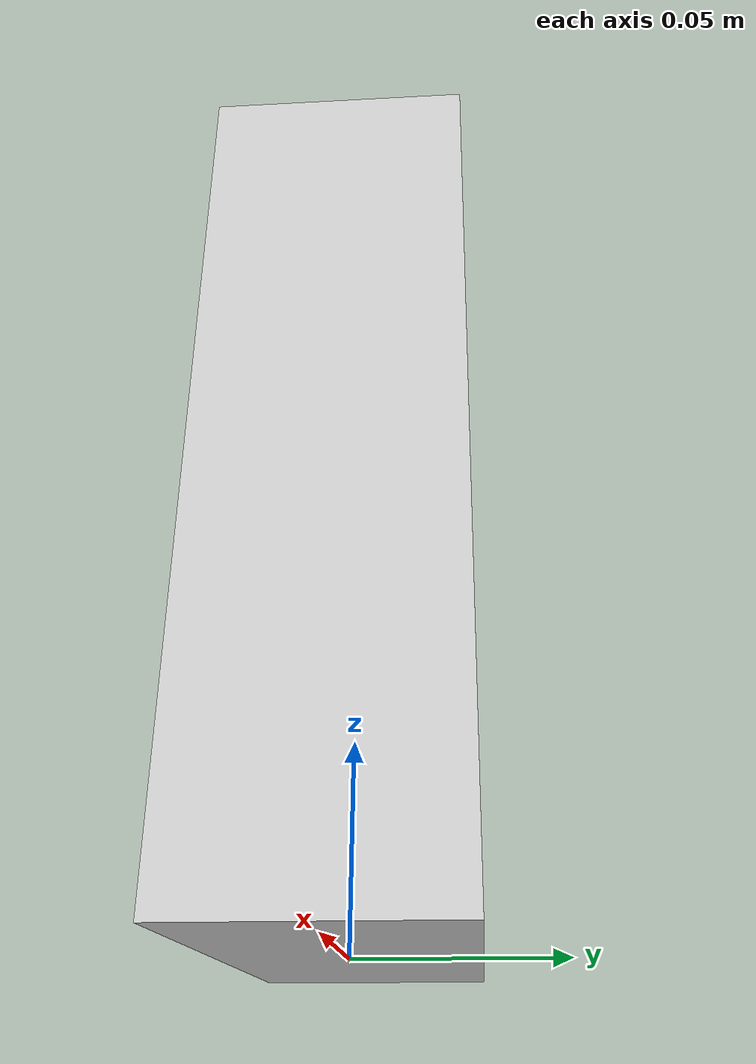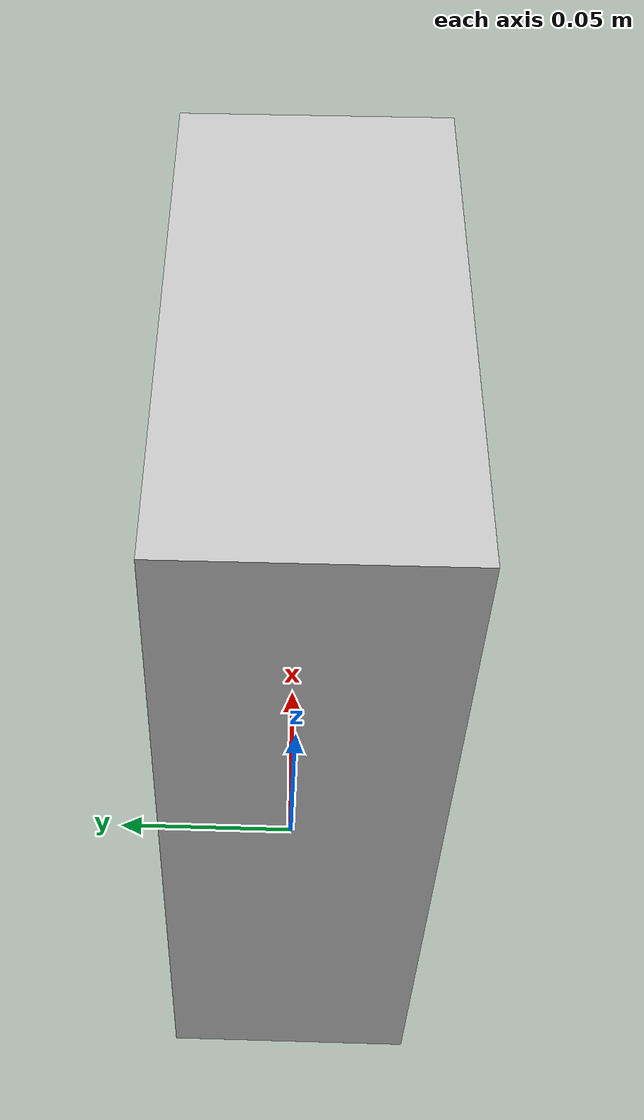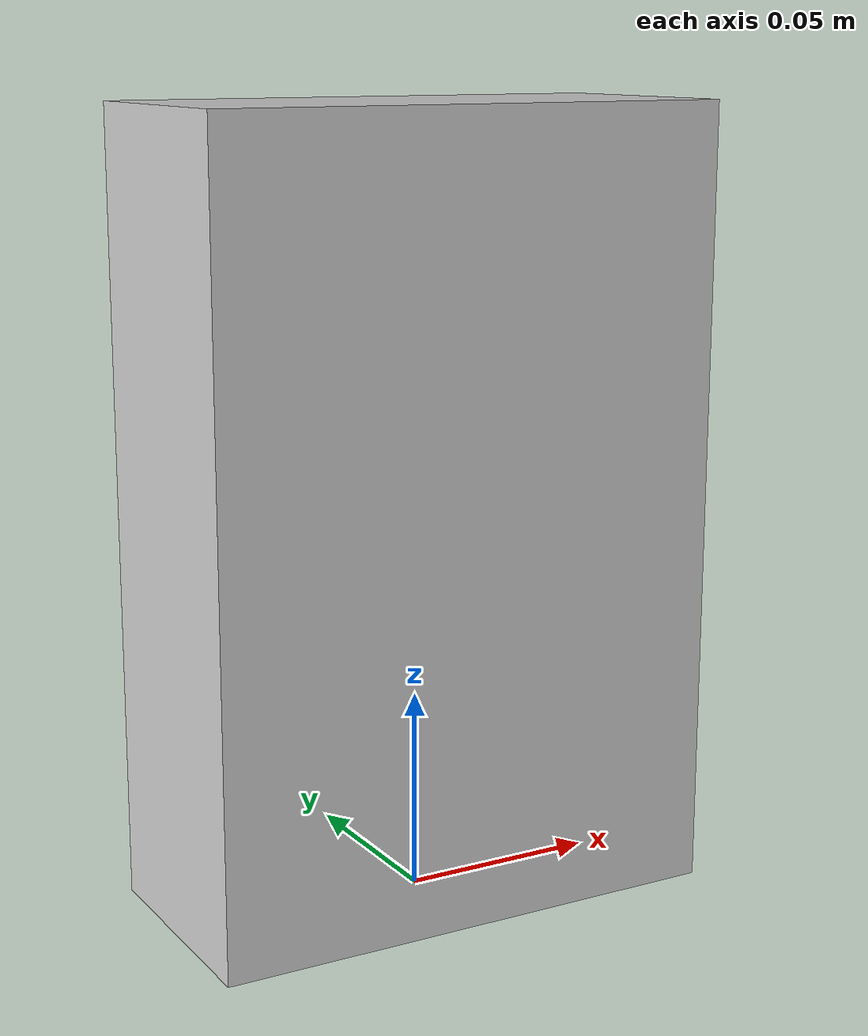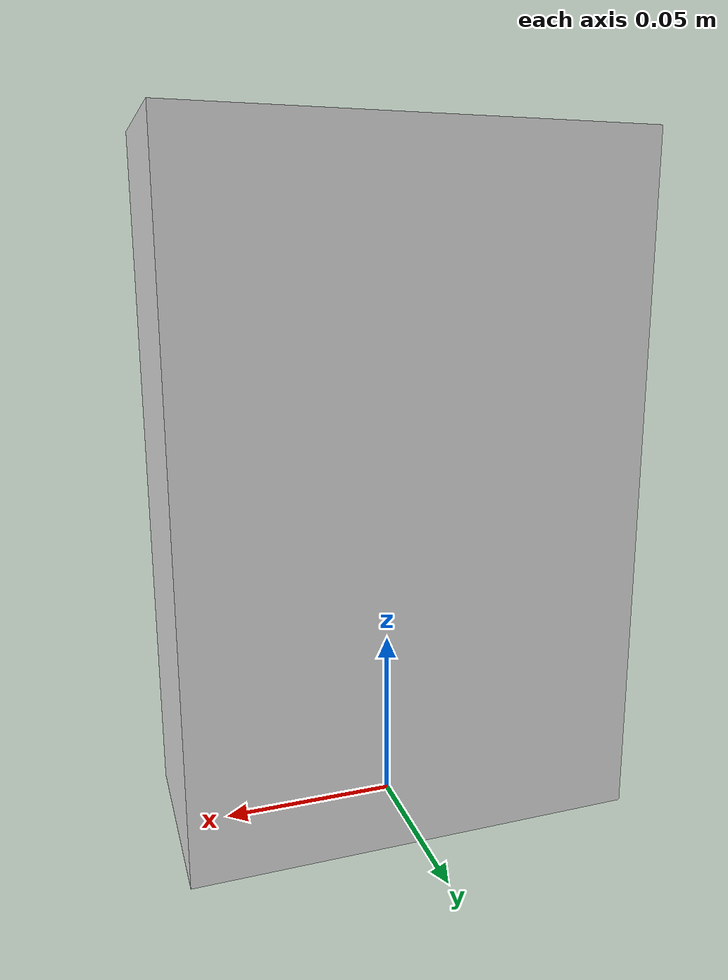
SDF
<?xml version="1.0"?>
<sdf version="1.6">
  <model name="cardboard_box">
    <link name="1_link">
      <collision name="1_col">
        <geometry>
          <box>
            <size>0.13 0.06 0.195</size>
          </box>
        </geometry>
      </collision>
      <visual name="1_vis">
        <geometry>
          <box>
            <size>0.13 0.06 0.195</size>
          </box>
        </geometry>
        <material>
          <ambient>0.8 0.8 0.8 1</ambient>
        </material>
      </visual>
      <pose>0 0 0.0975 0 0 0</pose>
    </link>
    <link name="wall1">
      <virtual_volume name="wall1_vv">
        <geometry>
          <box>
            <size>0.13 0.005 0.195</size>
          </box>
        </geometry>
        <pose>0.0 -0.03 0.0975 0 0 0</pose>
      </virtual_volume>
    </link>
    <static>true</static>
  </model>
</sdf>
